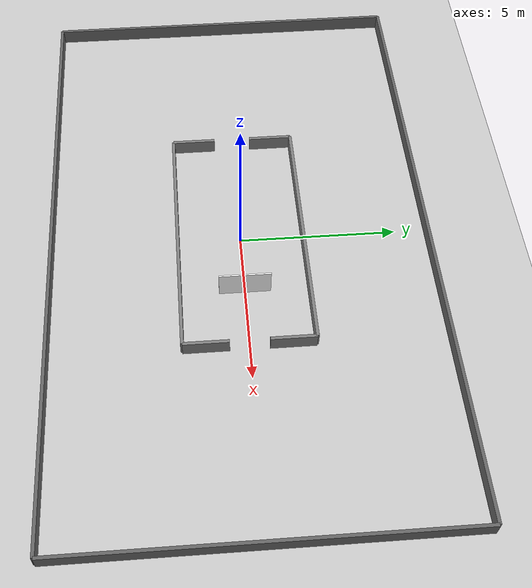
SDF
<sdf version="1.7">
  <world name="flat_detect">
    <physics name="1ms" type="ignored">
      <max_step_size>0.001</max_step_size>
      <real_time_factor>1.0</real_time_factor>
    </physics>

    <plugin filename="gz-sim-physics-system" name="gz::sim::systems::Physics"/>
    <plugin filename="gz-sim-user-commands-system" name="gz::sim::systems::UserCommands"/>
    <plugin filename="gz-sim-scene-broadcaster-system" name="gz::sim::systems::SceneBroadcaster"/>
    <plugin filename="gz-sim-sensors-system" name="gz::sim::systems::Sensors">
      <render_engine>ogre2</render_engine>
    </plugin>

    <light type="directional" name="sun">
      <cast_shadows>true</cast_shadows>
      <pose>0 0 10 0 0 0</pose>
      <diffuse>0.8 0.8 0.8 1</diffuse>
      <specular>0.2 0.2 0.2 1</specular>
      <attenuation>
        <range>1000</range>
        <constant>0.9</constant>
        <linear>0.01</linear>
        <quadratic>0.001</quadratic>
      </attenuation>
      <direction>-0.5 0.1 -0.9</direction>
    </light>

    <model name="ground_plane">
      <static>true</static>
      <link name="link">
        <collision name="collision">
          <geometry><plane><normal>0 0 1</normal><size>100 100</size></plane></geometry>
        </collision>
        <visual name="visual">
          <geometry><plane><normal>0 0 1</normal><size>100 100</size></plane></geometry>
          <material>
            <ambient>0.8 0.8 0.8 1</ambient>
            <diffuse>0.8 0.8 0.8 1</diffuse>
            <specular>0.2 0.2 0.2 1</specular>
          </material>
        </visual>
      </link>
    </model>

    <!-- Central chamber: full north/south walls (x in [-4,4]) -->
    <model name="chamber_north"><static>true</static><pose>0 2 0.25 0 0 0</pose>
      <link name="link">
        <collision name="c"><geometry><box><size>8 0.1 0.5</size></box></geometry></collision>
        <visual name="v"><geometry><box><size>8 0.1 0.5</size></box></geometry>
          <material><ambient>0.3 0.3 0.3 1</ambient><diffuse>0.5 0.5 0.5 1</diffuse></material></visual>
      </link>
    </model>
    <model name="chamber_south"><static>true</static><pose>0 -2 0.25 0 0 0</pose>
      <link name="link">
        <collision name="c"><geometry><box><size>8 0.1 0.5</size></box></geometry></collision>
        <visual name="v"><geometry><box><size>8 0.1 0.5</size></box></geometry>
          <material><ambient>0.3 0.3 0.3 1</ambient><diffuse>0.5 0.5 0.5 1</diffuse></material></visual>
      </link>
    </model>

    <model name="west_upper"><static>true</static><pose>-4 1.3 0.25 0 0 0</pose>
      <link name="link">
        <collision name="c"><geometry><box><size>0.1 1.4 0.5</size></box></geometry></collision>
        <visual name="v"><geometry><box><size>0.1 1.4 0.5</size></box></geometry>
          <material><ambient>0.3 0.3 0.3 1</ambient><diffuse>0.5 0.5 0.5 1</diffuse></material></visual>
      </link>
    </model>
    <model name="west_lower"><static>true</static><pose>-4 -1.3 0.25 0 0 0</pose>
      <link name="link">
        <collision name="c"><geometry><box><size>0.1 1.4 0.5</size></box></geometry></collision>
        <visual name="v"><geometry><box><size>0.1 1.4 0.5</size></box></geometry>
          <material><ambient>0.3 0.3 0.3 1</ambient><diffuse>0.5 0.5 0.5 1</diffuse></material></visual>
      </link>
    </model>

    <model name="east_upper"><static>true</static><pose>4 1.3 0.25 0 0 0</pose>
      <link name="link">
        <collision name="c"><geometry><box><size>0.1 1.4 0.5</size></box></geometry></collision>
        <visual name="v"><geometry><box><size>0.1 1.4 0.5</size></box></geometry>
          <material><ambient>0.3 0.3 0.3 1</ambient><diffuse>0.5 0.5 0.5 1</diffuse></material></visual>
      </link>
    </model>
    <model name="east_lower"><static>true</static><pose>4 -1.3 0.25 0 0 0</pose>
      <link name="link">
        <collision name="c"><geometry><box><size>0.1 1.4 0.5</size></box></geometry></collision>
        <visual name="v"><geometry><box><size>0.1 1.4 0.5</size></box></geometry>
          <material><ambient>0.3 0.3 0.3 1</ambient><diffuse>0.5 0.5 0.5 1</diffuse></material></visual>
      </link>
    </model>

    <model name="perim_north"><static>true</static><pose>0 6 0.25 0 0 0</pose>
      <link name="link">
        <collision name="c"><geometry><box><size>20 0.1 0.5</size></box></geometry></collision>
        <visual name="v"><geometry><box><size>20 0.1 0.5</size></box></geometry>
          <material><ambient>0.2 0.2 0.2 1</ambient><diffuse>0.4 0.4 0.4 1</diffuse></material></visual>
      </link>
    </model>
    <model name="perim_south"><static>true</static><pose>0 -6 0.25 0 0 0</pose>
      <link name="link">
        <collision name="c"><geometry><box><size>20 0.1 0.5</size></box></geometry></collision>
        <visual name="v"><geometry><box><size>20 0.1 0.5</size></box></geometry>
          <material><ambient>0.2 0.2 0.2 1</ambient><diffuse>0.4 0.4 0.4 1</diffuse></material></visual>
      </link>
    </model>
    <model name="perim_west"><static>true</static><pose>-10 0 0.25 0 0 0</pose>
      <link name="link">
        <collision name="c"><geometry><box><size>0.1 12 0.5</size></box></geometry></collision>
        <visual name="v"><geometry><box><size>0.1 12 0.5</size></box></geometry>
          <material><ambient>0.2 0.2 0.2 1</ambient><diffuse>0.4 0.4 0.4 1</diffuse></material></visual>
      </link>
    </model>
    <model name="perim_east"><static>true</static><pose>10 0 0.25 0 0 0</pose>
      <link name="link">
        <collision name="c"><geometry><box><size>0.1 12 0.5</size></box></geometry></collision>
        <visual name="v"><geometry><box><size>0.1 12 0.5</size></box></geometry>
          <material><ambient>0.2 0.2 0.2 1</ambient><diffuse>0.4 0.4 0.4 1</diffuse></material></visual>
      </link>
    </model>

    <!-- YOLOE-detectable target ~2 m ahead of the robot spawn (origin, facing +x) -->
    <include>
      <uri>model://detect_billboard</uri>
      <pose>2.0 0 0.5 0 0 0</pose>
    </include>

    <gravity>0 0 -9.8</gravity>
    <scene>
      <ambient>0.4 0.4 0.4 1</ambient>
      <background>0.7 0.7 0.7 1</background>
      <shadows>true</shadows>
    </scene>
  </world>
</sdf>

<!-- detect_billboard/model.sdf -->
<sdf version="1.7">
  <model name="detect_billboard">
    <static>true</static>
    <link name="link">
      <visual name="visual">
        <geometry><box><size>0.05 1.6 0.9</size></box></geometry>
        <material>
          <ambient>1 1 1 1</ambient>
          <diffuse>1 1 1 1</diffuse>
          <pbr>
            <metal>
              <albedo_map>materials/textures/bus.jpg</albedo_map>
              <metalness>0.0</metalness>
              <roughness>1.0</roughness>
            </metal>
          </pbr>
        </material>
      </visual>
      <collision name="collision">
        <geometry><box><size>0.05 1.6 0.9</size></box></geometry>
      </collision>
    </link>
  </model>
</sdf>
